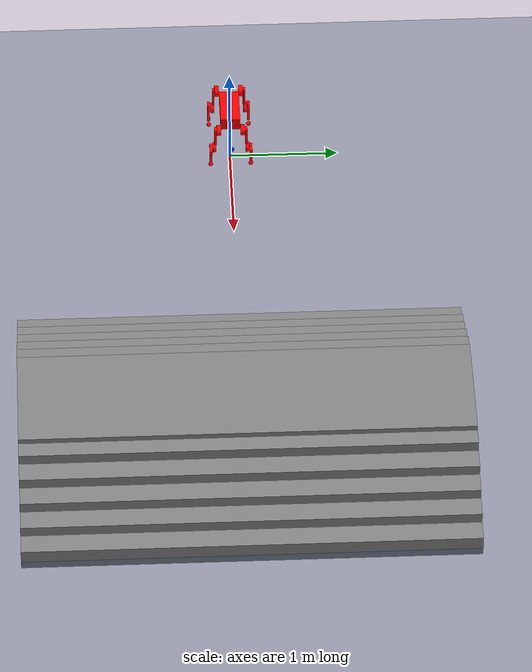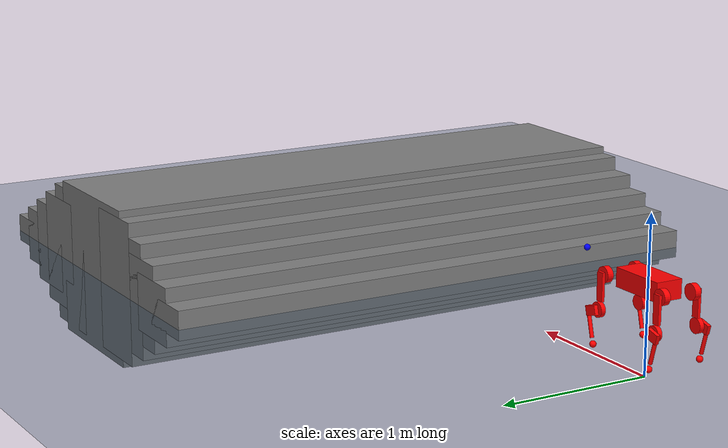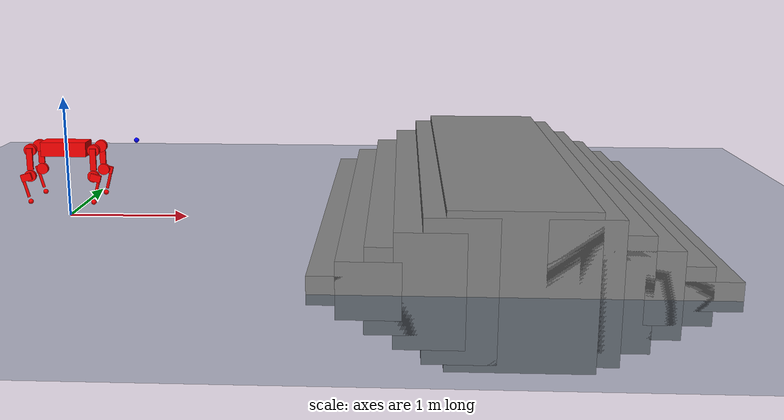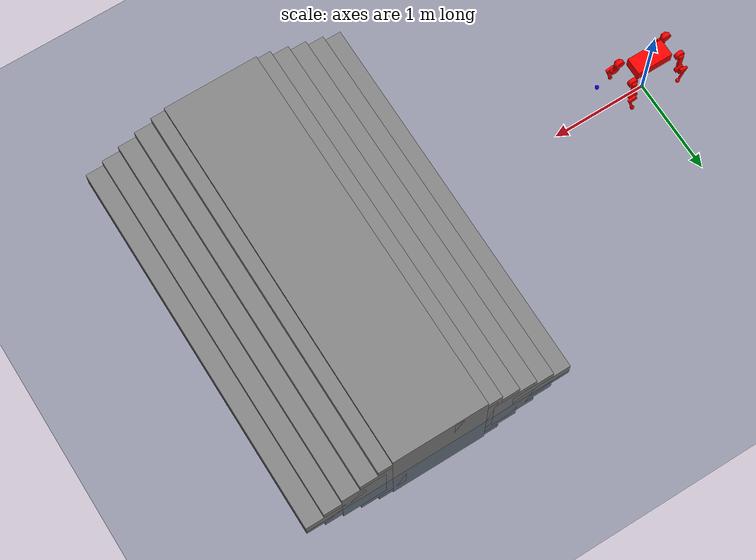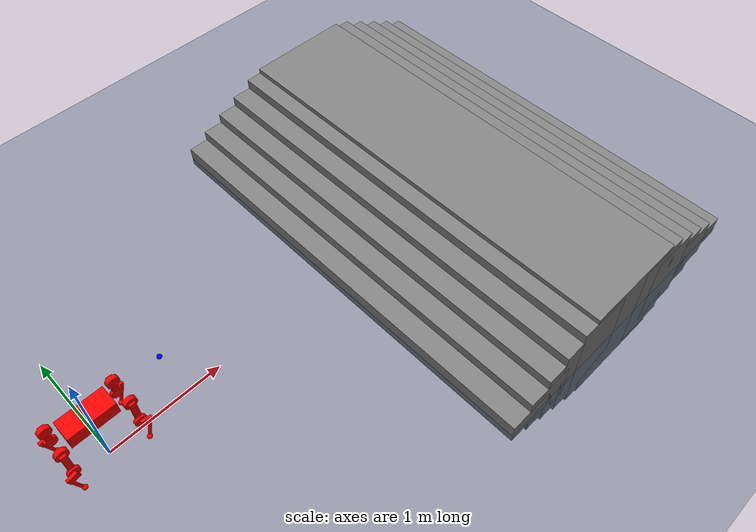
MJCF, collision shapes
<mujoco model="big_reddog scene">
  <include file="bigreddog_new.xml"/>

  <statistic center="0 0 0.1" extent="0.8"/>

  <extension>
    <plugin plugin="mujoco.sensor.ray_caster" />
  </extension>

  <visual>
    <headlight diffuse="0.6 0.6 0.6" ambient="0.3 0.3 0.3" specular="0 0 0"/>
    <rgba haze="0.15 0.25 0.35 1"/>
    <global azimuth="-130" elevation="-20"/>

  </visual>

  <asset>
    <texture type="skybox" builtin="gradient" rgb1="0.3 0.5 0.7" rgb2="0 0 0" width="512" height="3072"/>
    <texture type="2d" name="groundplane" builtin="checker" mark="edge" rgb1="0.2 0.3 0.4" rgb2="0.1 0.2 0.3"
      markrgb="0.8 0.8 0.8" width="300" height="300"/>
    <material name="groundplane" texture="groundplane" texuniform="true" texrepeat="5 5" reflectance="0.2"/>
  </asset>

  <worldbody>
    <light pos="0 0 1.5" dir="0 0 -1" directional="true"/>
    <geom name="floor" size="0 0 0.05" type="plane" material="groundplane"/>

    <!-- 10cm -->
    <geom pos="2.4 0 0.02" type="box"  size="0.21 2 0.10" quat="1.0 0 0 0"/>
    <geom pos="2.6 0 0.02" type="box"  size="0.22 2 0.20" quat="1.0 0 0 0"/>
    <geom pos="2.8 0 0.02" type="box"  size="0.23 2 0.30" quat="1.0 0 0 0"/>
    <geom pos="3 0 0.02" type="box"  size="0.24 2 0.40" quat="1.0 0 0 0"/>
    <geom pos="3.2 0 0.02" type="box"  size="0.25 2 0.50" quat="1.0 0 0 0"/>
    <geom pos="3.6 0 0.02" type="box"  size="0.50 2 0.55" quat="1.0 0 0 0"/>
    <geom pos="4.0 0 0.02" type="box"  size="0.25 2 0.50" quat="1.0 0 0 0"/>
    <geom pos="4.2 0 0.02" type="box"  size="0.24 2 0.40" quat="1.0 0 0 0"/>
    <geom pos="4.4 0 0.02" type="box"  size="0.23 2 0.3" quat="1.0 0 0 0"/>
    <geom pos="4.6 0 0.02" type="box"  size="0.22 2 0.2" quat="1.0 0 0 0"/>
    <geom pos="4.8 0 0.02" type="box"  size="0.21 2 0.1" quat="1.0 0 0 0"/>

  <!-- 15cm -->

  <!-- 18cm -->

  </worldbody>

  <sensor>

    <plugin name="raycaster" plugin="mujoco.sensor.ray_caster" objtype="camera"
      objname="RayCaster">
      <config key="type" value="yaw" />
      <config key="resolution" value="0.1" />
      <config key="size" value="1.0 0.35" />
      <config key="dis_range" value="0.01 1.6" />

      <config key="compute_time_log" value="1" />

      <config key="draw_deep_ray" value="1 5 0 1 1 0.5 1" />
      <config key="draw_deep_ray_ids" value="1 10 1 0 0 0.5 1 2 3 4 5 30" />
      <config key="draw_deep" value="1 5 0 1 0" />
      <config key="draw_hip_point" value="1 0.02" />

      <config key="sensor_data_types" value="data" />
      <config key="noise_type" value="uniform" />
      <config key="noise_cfg" value="-0.1 0.1 1" />

    </plugin>

  </sensor>
</mujoco>

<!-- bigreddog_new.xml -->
<mujoco model="bigreddog">
    <compiler angle="radian" meshdir="meshes_big_reddog" autolimits="true"/>

    <option cone="elliptic" impratio="100" />

    <default>
    <default class="bigreddog">
      <geom friction="0.4" margin="0.001" condim="1"/>
      <joint damping="0.1" armature="0.01" frictionloss="0.2"/>
      <motor ctrlrange="-20 20"/>
      <default class="hip">
        <joint axis="1 0 0" range="-1.0472 1.0472"/>
        <motor ctrlrange="-20 20"/>
      </default>
      <default class="front_thigh">
        <joint axis="0 1 0" range="0.1 1.57"/>
        <motor ctrlrange="-20 20"/>
      </default>
      <default class="rear_thigh">
        <joint axis="0 1 0" range="-1.57 -0.1"/>
        <motor ctrlrange="-20 20"/>
      </default>
      <default class="front_calf">
        <joint axis="0 1 0" range="-2.7227 -0.3"/>
        <motor ctrlrange="-80 80"/>
      </default>
      <default class="rear_calf">
        <joint axis="0 1 0" range="0.3 2.7227"/>
        <motor ctrlrange="-80 80"/>
      </default>
      <default class="visual">
        <geom type="mesh" contype="0" conaffinity="0" group="2"
          rgba="0.752941 0.752941 0.752941 1"
          density="0"
        />
      </default>
      <default class="collision">
        <geom group="2" type="mesh" rgba="1 0 0 0.3" />
        <default class="foot">
          <geom size="0.022" priority="1" condim="6"
            friction="0.4 0.02 0.01"/>
        </default>
      </default>
    </default>
  </default>

    <asset>

        <material name="black" rgba="0 0 0 1" />
        <material name="red" rgba="1 0.149 0.149 1" />
        <material name="metal" rgba=".9 .95 .95 1" />
        <material name="dark_gray" rgba="0.1 0.1 0.1 1" />
        <material name="light_gray" rgba="0.15 0.15 0.15 1" />

        <mesh name="base_link" file="base_link.STL" />
        <mesh name="FL_hip_motor" file="FL_hip_motor.STL" />
        <mesh name="FL_hip_link" file="FL_hip_link.STL" />
        <mesh name="FL_thigh_motor" file="FL_thigh_motor.STL" />
        <mesh name="FL_thigh_link" file="FL_thigh_link.STL" />
        <mesh name="FL_calf_motor" file="FL_calf_motor.STL" />
        <mesh name="FL_calf_link" file="FL_calf_link.STL" />
        <mesh name="FR_hip_motor" file="FR_hip_motor.STL" />
        <mesh name="FR_hip_link" file="FR_hip_link.STL" />
        <mesh name="FR_thigh_motor" file="FR_thigh_motor.STL" />
        <mesh name="FR_thigh_link" file="FR_thigh_link.STL" />
        <mesh name="FR_calf_motor" file="FR_calf_motor.STL" />
        <mesh name="FR_calf_link" file="FR_calf_link.STL" />
        <mesh name="RL_hip_motor" file="RL_hip_motor.STL" />
        <mesh name="RL_hip_link" file="RL_hip_link.STL" />
        <mesh name="RL_thigh_motor" file="RL_thigh_motor.STL" />
        <mesh name="RL_thigh_link" file="RL_thigh_link.STL" />
        <mesh name="RL_calf_motor" file="RL_calf_motor.STL" />
        <mesh name="RL_calf_link" file="RL_calf_link.STL" />
        <mesh name="RR_hip_motor" file="RR_hip_motor.STL" />
        <mesh name="RR_hip_link" file="RR_hip_link.STL" />
        <mesh name="RR_thigh_motor" file="RR_thigh_motor.STL" />
        <mesh name="RR_thigh_link" file="RR_thigh_link.STL" />
        <mesh name="RR_calf_motor" file="RR_calf_motor.STL" />
        <mesh name="RR_calf_link" file="RR_calf_link.STL" />
        <mesh name="base_up" file="base_up.STL" />
        <mesh name="switch" file="switch.STL" />
    </asset>
    <worldbody>
        <body name="base_link" pos="0 0 0.6" childclass="bigreddog">

            <body name="raycaster_mount" pos="0.6 0 0.05">  <!-- 偏移狗頭上方 -->
              <geom type="sphere" size="0.02" rgba="0 0 1 0.3"/> <!-- 可選，方便看到 camera mount -->
              <camera name="RayCaster"/>
            </body>

            <inertial pos="0.000561536 -1.45402e-05 -0.0238998" quat="0.000157389 0.707722 8.11149e-05 0.706491" mass="7.39" diaginertia="0.061 0.016 0.065" />
            <freejoint />
            <geom mesh="base_link" material="red" class="visual"/>
            <geom mesh="base_up" material="dark_gray" class="visual"/>
            <geom mesh="switch" material="metal" class="visual"/>
            <geom pos="0.175 0.0655 -0.021" mesh="FL_hip_motor" material="black" class="visual"/>
            <geom pos="0.175 -0.0655 -0.021" mesh="FR_hip_motor" material="black" class="visual"/>
            <geom pos="-0.175 0.0655 -0.021" mesh="RL_hip_motor" material="black" class="visual"/>
            <geom pos="-0.175 -0.0655 -0.021" mesh="RR_hip_motor" material="black" class="visual"/>
            <geom size="0.19 0.09 0.06" pos="0 0 -0.02" type="box" class="collision"/>
            <site name="imu" pos="0 0 0" />
            <body name="FL_hip_link" pos="0.206488 0.0655 -0.021">
                <inertial pos="0.0543486 0.0443048 4.29565e-05" quat="0.425897 0.43261 0.560175 0.563618" mass="0.69" diaginertia="0.000232 0.000107 0.000176" />
                <joint name="FL_hip_joint" class="hip"/>
                <geom mesh="FL_hip_link" material="light_gray" class="visual"/>
                <geom mesh="FL_thigh_motor" pos="0.058719 0.034867 0" material="black" class="visual"/>
                <geom size="0.05 0.02" pos="0.058719 0.044867 0" quat="0.707388 0.706825 0 0" type="cylinder" class="collision"/>
                <body name="FL_thigh_link" pos="0.058719 0.066367 0">
                    <inertial pos="-7.78345e-05 0.0173212 -0.183562" quat="0.706504 0.0224744 -0.0239676 0.706946" mass="1.09" diaginertia="0.000802 0.000758 0.000055" />
                    <joint name="FL_thigh_joint" class="front_thigh"/>
                    <geom mesh="FL_thigh_link" material="dark_gray" class="visual"/>
                    <geom mesh="FL_calf_motor" pos="0 0.005 -0.21" material="black" class="visual"/>
                    <geom size="0.025 0.01 0.09" pos="0 0.011 -0.07" type="box" class="collision" />
                    <geom size="0.048 0.015" pos="0 0.02 -0.21" quat="0.707388 0.706825 0 0" type="cylinder" class="collision" />
                    <body name="FL_calf_link" pos="0 0.0365 -0.21">
                        <inertial pos="0.020263 0.0160878 -0.108108" quat="0.643021 0.0671604 0.0435813 0.761652" mass="0.15" diaginertia="0.00122 0.001155 0.000097" />
                        <joint name="FL_calf_joint" class="front_calf"/>
                        <geom mesh="FL_calf_link" material="dark_gray" class="visual"/>
                        <geom size="0.044 0.0125 0.03" pos="0.024 0.016 -0.0064" quat="0.991445 0 0.130526 0" type="box" class="collision" />
                        <geom size="0.0125 0.0675" pos="0.029 0.0175 -0.108" quat="0.991445 0 0.130526 0" type="cylinder" class="collision"/>
                        <geom size="0.021" pos="0 0.0175 -0.21" type="sphere" class="foot"/>
                        <site name="FL_touch" pos="0 0 -0.13" size="0.016" rgba="1 1 1 0.01"/>
                        <body name="FL_foot" pos="0 0 -0.13"/>
                    </body>
                </body>
            </body>
            <body name="FR_hip_link" pos="0.2065 -0.0655 -0.021">
                <inertial pos="0.0543388 -0.0445207 4.29565e-05" quat="0.564121 0.560681 0.431981 0.425203" mass="0.69" diaginertia="0.000232 0.000107 0.000176" />
                <joint name="FR_hip_joint" class="hip"/>
                <geom mesh="FR_hip_link" material="light_gray" class="visual"/>
                <geom mesh="FR_thigh_motor" pos="0.058707 -0.035133 0" material="black" class="visual"/>
                <geom size="0.05 0.02" pos="0.058707 -0.045133 0" quat="0.707388 0.706825 0 0" type="cylinder" class="collision" />
                <body name="FR_thigh_link" pos="0.058707 -0.066633 0">
                    <inertial pos="-7.78345e-05 -0.0173212 -0.183562" quat="0.706946 -0.0239676 0.0224744 0.706504" mass="1.09" diaginertia="0.000802 0.000758 0.000055" />
                    <joint name="FR_thigh_joint" class="front_thigh"/>
                    <geom mesh="FR_thigh_link" material="dark_gray" class="visual"/>
                    <geom mesh="FR_calf_motor" pos="0 -0.005 -0.21" material="black" class="visual"/>
                    <geom size="0.025 0.01 0.09" pos="0 -0.011 -0.07" type="box" class="collision" />
                    <geom size="0.048 0.015" pos="0 -0.02 -0.21" quat="0.707388 0.706825 0 0" type="cylinder" class="collision" />
                    <body name="FR_calf_link" pos="0 -0.0365 -0.21">
                        <inertial pos="0.020263 -0.0160878 -0.108108" quat="0.719006 -0.0179301 -0.0032925 0.694765" mass="0.15" diaginertia="0.00122 0.001155 0.000097" />
                        <joint name="FR_calf_joint" class="front_calf"/>
                        <geom mesh="FR_calf_link" material="dark_gray" class="visual"/>
                        <geom size="0.044 0.0125 0.03" pos="0.024 -0.016 -0.0064" quat="0.991445 0 0.130526 0" type="box" class="collision" />
                        <geom size="0.0125 0.0675" pos="0.029 -0.0175 -0.108" quat="0.991445 0 0.130526 0" type="cylinder" class="collision" />
                        <geom size="0.021" pos="0 -0.0175 -0.21" type="sphere" class="foot"/>
                        <site name="FR_touch" pos="0 0 -0.13" size="0.016" rgba="1 1 1 0.01"/>
                        <body name="FR_foot" pos="0 0 -0.13"/>
                    </body>
                </body>
            </body>
            <body name="RL_hip_link" pos="-0.2065 0.0655 -0.021">
                <inertial pos="-0.0543583 0.0443048 4.29565e-05" quat="0.560185 0.563626 0.425885 0.432597" mass="0.69" diaginertia="0.000232 0.000107 0.000176" />
                <joint name="RL_hip_joint" class="hip"/>
                <geom mesh="RL_hip_link" material="light_gray" class="visual"/>
                <geom mesh="RL_thigh_motor" pos="-0.058731 0.034867 0" material="black" class="visual"/>
                <geom size="0.05 0.02" pos="-0.058731 0.044867 0" quat="0.707388 0.706825 0 0" type="cylinder" class="collision" />
                <body name="RL_thigh_link" pos="-0.058731 0.066367 0">
                    <inertial pos="0.000102997 0.0173212 -0.183562" quat="0.706936 0.0239333 -0.0225088 0.706514" mass="1.09" diaginertia="0.000802 0.000758 0.000055" />
                    <joint name="RL_thigh_joint" class="rear_thigh"/>
                    <geom mesh="RL_thigh_link" material="dark_gray" class="visual"/>
                    <geom mesh="RL_calf_motor" pos="0 0.005 -0.21" material="black" class="visual"/>
                    <geom size="0.025 0.01 0.09" pos="0 0.011 -0.07" type="box" class="collision" />
                    <geom size="0.048 0.015" pos="0 0.02 -0.21" quat="0.707388 0.706825 0 0" type="cylinder" class="collision" />
                    <body name="RL_calf_link" pos="0 0.0365 -0.21">
                        <inertial pos="-0.0202835 0.0160878 -0.108103" quat="0.761312 -0.0434625 -0.0669566 0.643453" mass="0.15" diaginertia="0.00122 0.001155 0.000097" />
                        <joint name="RL_calf_joint" class="rear_calf"/>
                        <geom mesh="RL_calf_link" material="dark_gray" class="visual"/>
                        <geom size="0.044 0.0125 0.03" pos="-0.024 0.016 -0.0064" quat="0.991445 0 -0.130526 0" type="box" class="collision" />
                        <geom size="0.0125 0.0675" pos="-0.029 0.0175 -0.108" quat="0.991445 0 -0.130526 0" type="cylinder" class="collision" />
                        <geom size="0.021" pos="0 0.0175 -0.21" type="sphere" class="foot"/>
                        <site name="RL_touch" pos="0 0 -0.13" size="0.016" rgba="1 1 1 0.01"/>
                        <body name="RL_foot" pos="0 0 -0.13"/>
                    </body>
                </body>
            </body>
            <body name="RR_hip_link" pos="-0.205 -0.0655 -0.021">
                <inertial pos="-0.0558583 -0.0444128 4.29565e-05" quat="0.432277 0.425532 0.563882 0.560443" mass="0.69" diaginertia="0.000232 0.000107 0.000176" />
                <joint name="RR_hip_joint" class="hip"/>
                <geom mesh="RR_hip_link" material="light_gray" class="visual"/>
                <geom mesh="RR_thigh_motor" pos="-0.060231 -0.035 0" material="black" class="visual"/>
                <geom size="0.05 0.02" pos="-0.060231 -0.045 0" quat="0.707388 0.706825 0 0" type="cylinder" class="collision" />
                <body name="RR_thigh_link" pos="-0.060231 -0.0665 0">
                    <inertial pos="7.78345e-05 -0.0173212 -0.183562" quat="0.706504 -0.0224744 0.0239676 0.706946" mass="1.09" diaginertia="0.000802 0.000758 0.000055" />
                    <joint name="RR_thigh_joint" class="rear_thigh"/>
                    <geom mesh="RR_thigh_link" material="dark_gray" class="visual"/>
                    <geom mesh="RR_calf_motor" pos="0 -0.005 -0.21" material="black" class="visual"/>
                    <geom size="0.025 0.01 0.09" pos="0 -0.011 -0.07" type="box" class="collision"/>
                    <geom size="0.048 0.015" pos="0 -0.02 -0.21" quat="0.707388 0.706825 0 0" type="cylinder" class="collision" />
                    <body name="RR_calf_link" pos="0 -0.0365 -0.21">
                        <inertial pos="-0.020263 -0.0160878 -0.108108" quat="0.643021 -0.0671604 -0.0435813 0.761652" mass="0.15" diaginertia="0.00122 0.001155 0.000097" />
                        <joint name="RR_calf_joint" class="rear_calf"/>
                        <geom mesh="RR_calf_link" material="dark_gray" class="visual" />
                        <geom size="0.044 0.0125 0.03" pos="-0.024 -0.016 -0.0064" quat="0.991445 0 -0.130526 0" type="box" class="collision" />
                        <geom size="0.0125 0.0675" pos="-0.029 -0.0175 -0.108" quat="0.991445 0 -0.130526 0" type="cylinder" class="collision"/>
                        <geom size="0.021" pos="0 -0.0175 -0.21" type="sphere" class="foot"/>
                        <site name="RR_touch" pos="0 0 -0.13" size="0.016" rgba="1 1 1 0.01"/>
                        <body name="RR_foot" pos="0 0 -0.13"/>
                    </body>
                </body>
            </body>
        </body>
    </worldbody>

    <actuator>
        <motor class="hip" name="FL_hip" joint="FL_hip_joint" />
        <motor class="front_thigh" name="FL_thigh" joint="FL_thigh_joint" />
        <motor class="front_calf" name="FL_calf" joint="FL_calf_joint" />

        <motor class="hip" name="FR_hip" joint="FR_hip_joint" />
        <motor class="front_thigh" name="FR_thigh" joint="FR_thigh_joint" />
        <motor class="front_calf" name="FR_calf" joint="FR_calf_joint" />

        <motor class="hip" name="RL_hip" joint="RL_hip_joint" />
        <motor class="rear_thigh" name="RL_thigh" joint="RL_thigh_joint" />
        <motor class="rear_calf" name="RL_calf" joint="RL_calf_joint" />

        <motor class="hip" name="RR_hip" joint="RR_hip_joint" />
        <motor class="rear_thigh" name="RR_thigh" joint="RR_thigh_joint" />
        <motor class="rear_calf" name="RR_calf" joint="RR_calf_joint" />

    </actuator>

    <sensor>
        <jointpos name="FL_hip_pos" joint="FL_hip_joint" />
        <jointpos name="FL_thigh_pos" joint="FL_thigh_joint" />
        <jointpos name="FL_calf_pos" joint="FL_calf_joint" />

        <jointpos name="FR_hip_pos" joint="FR_hip_joint" />
        <jointpos name="FR_thigh_pos" joint="FR_thigh_joint" />
        <jointpos name="FR_calf_pos" joint="FR_calf_joint" />
        <jointpos name="RL_hip_pos" joint="RL_hip_joint" />
        <jointpos name="RL_thigh_pos" joint="RL_thigh_joint" />
        <jointpos name="RL_calf_pos" joint="RL_calf_joint" />

        <jointpos name="RR_hip_pos" joint="RR_hip_joint" />
        <jointpos name="RR_thigh_pos" joint="RR_thigh_joint" />
        <jointpos name="RR_calf_pos" joint="RR_calf_joint" />

        <jointvel name="FL_hip_vel" joint="FL_hip_joint" />
        <jointvel name="FL_thigh_vel" joint="FL_thigh_joint" />
        <jointvel name="FL_calf_vel" joint="FL_calf_joint" />

        <jointvel name="FR_hip_vel" joint="FR_hip_joint" />
        <jointvel name="FR_thigh_vel" joint="FR_thigh_joint" />
        <jointvel name="FR_calf_vel" joint="FR_calf_joint" />
        <jointvel name="RL_hip_vel" joint="RL_hip_joint" />
        <jointvel name="RL_thigh_vel" joint="RL_thigh_joint" />
        <jointvel name="RL_calf_vel" joint="RL_calf_joint" />

        <jointvel name="RR_hip_vel" joint="RR_hip_joint" />
        <jointvel name="RR_thigh_vel" joint="RR_thigh_joint" />
        <jointvel name="RR_calf_vel" joint="RR_calf_joint" />

        <jointactuatorfrc name="FL_hip_torque" joint="FL_hip_joint" noise="0.01" />
        <jointactuatorfrc name="FL_thigh_torque" joint="FL_thigh_joint" noise="0.01" />
        <jointactuatorfrc name="FL_calf_torque" joint="FL_calf_joint" noise="0.01" />

        <jointactuatorfrc name="FR_hip_torque" joint="FR_hip_joint" noise="0.01" />
        <jointactuatorfrc name="FR_thigh_torque" joint="FR_thigh_joint" noise="0.01" />
        <jointactuatorfrc name="FR_calf_torque" joint="FR_calf_joint" noise="0.01" />
        <jointactuatorfrc name="RL_hip_torque" joint="RL_hip_joint" noise="0.01" />
        <jointactuatorfrc name="RL_thigh_torque" joint="RL_thigh_joint" noise="0.01" />
        <jointactuatorfrc name="RL_calf_torque" joint="RL_calf_joint" noise="0.01" />

        <jointactuatorfrc name="RR_hip_torque" joint="RR_hip_joint" noise="0.01" />
        <jointactuatorfrc name="RR_thigh_torque" joint="RR_thigh_joint" noise="0.01" />
        <jointactuatorfrc name="RR_calf_torque" joint="RR_calf_joint" noise="0.01" />

        <framequat name="imu_quat" objtype="site" objname="imu" />
        <gyro name="imu_gyro" site="imu" />
        <accelerometer name="imu_acc" site="imu" />

        <framepos name="frame_pos" objtype="site" objname="imu" />
        <framelinvel name="frame_vel" objtype="site" objname="imu" />
        <frameangvel name="frame_ang_vel" objtype="site" objname="imu" />

        <touch name="FR_touch" site="FR_touch" />
        <touch name="FL_touch" site="FL_touch" />
        <touch name="RR_touch" site="RR_touch" />
        <touch name="RL_touch" site="RL_touch" />
    </sensor>

    <keyframe>
        <key name="home" qpos="0 0 0.27 1 0 0 0 0 0.9 -1.8 0 0.9 -1.8 0 0.9 -1.8 0 0.9 -1.8"
        ctrl="0 0.9 -1.8 0 0.9 -1.8 0 0.9 -1.8 0 0.9 -1.8" />
    </keyframe>

</mujoco>
